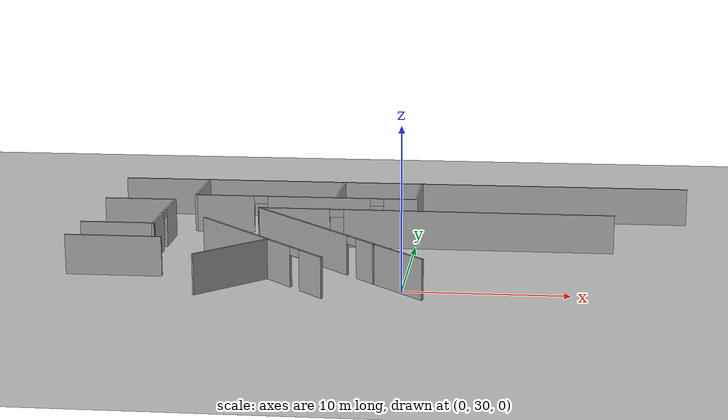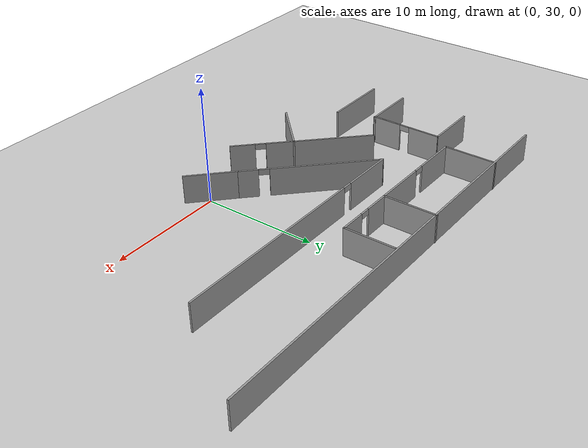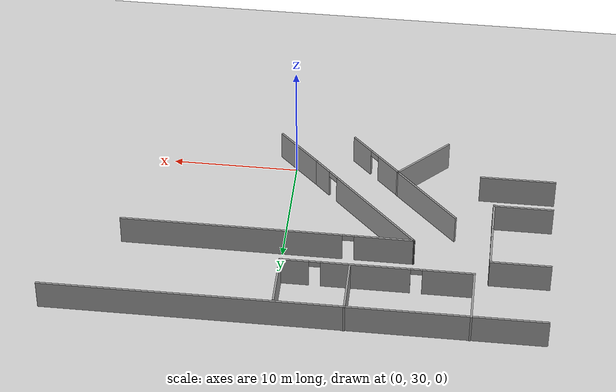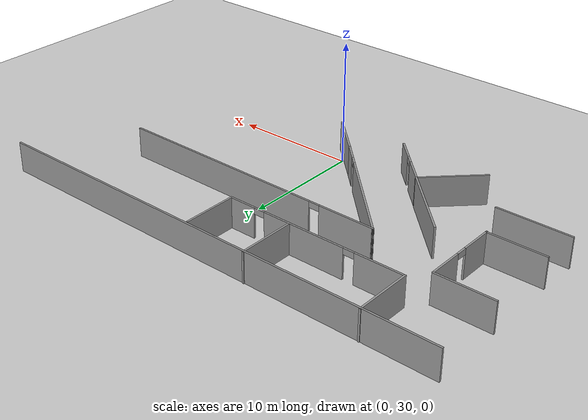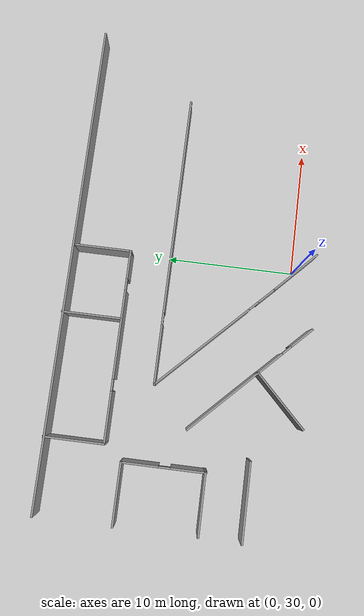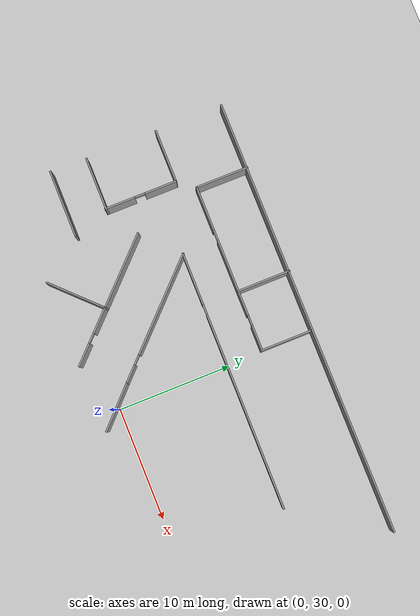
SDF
<sdf version="1.6">
 <world name="default">
  <model name="ground_plane">
   <static>1</static>
   <link name="link">
    <collision name="collision">
     <geometry><plane><normal>0 0 1</normal><size>100 100</size></plane></geometry>
     <surface>
      <contact><collide_bitmask>65535</collide_bitmask></contact>
      <friction><ode><mu>100</mu><mu2>50</mu2></ode></friction>
     </surface>
    </collision>
    <visual name="visual">
     <cast_shadows>0</cast_shadows>
     <geometry><plane><normal>0 0 1</normal><size>100 100</size></plane></geometry>
     <material>
      <script><uri>file://media/materials/scripts/gazebo.material</uri><name>Gazebo/Grey</name></script>
     </material>
    </visual>
   </link>
  </model>
  <model name="Level_1_with_doors">
   <link name="Wall_100">
    <pose>-15.0465 7.67091 0 0 -0 0.785398</pose>
    <visual name="Wall_100_Visual">
     <pose>0 0 1.25 0 -0 0</pose>
     <geometry><box><size>5.5 0.15 2.5</size></box></geometry>
     <material>
      <script><uri>file://media/materials/scripts/gazebo.material</uri><name>Gazebo/Grey</name></script>
      <ambient>1 1 1 1</ambient>
      <shader type="pixel"/>
     </material>
     <meta><layer>0</layer></meta>
    </visual>
    <collision name="Wall_100_Collision">
     <pose>0 0 1.25 0 -0 0</pose>
     <geometry><box><size>5.5 0.15 2.5</size></box></geometry>
     <surface>
      <friction>
       <ode><mu>1</mu><mu2>1</mu2><fdir1>0 0 0</fdir1><slip1>0</slip1><slip2>0</slip2></ode>
       <torsional>
        <coefficient>1</coefficient>
        <patch_radius>0</patch_radius>
        <surface_radius>0</surface_radius>
        <use_patch_radius>1</use_patch_radius>
        <ode><slip>0</slip></ode>
       </torsional>
      </friction>
      <bounce><restitution_coefficient>0</restitution_coefficient><threshold>1e+06</threshold></bounce>
      <contact>
       <collide_without_contact>0</collide_without_contact>
       <collide_without_contact_bitmask>1</collide_without_contact_bitmask>
       <collide_bitmask>1</collide_bitmask>
       <ode>
        <soft_cfm>0</soft_cfm>
        <soft_erp>0.2</soft_erp>
        <kp>1e+13</kp>
        <kd>1</kd>
        <max_vel>0.01</max_vel>
        <min_depth>0</min_depth>
       </ode>
       <bullet>
        <split_impulse>1</split_impulse>
        <split_impulse_penetration_threshold>-0.01</split_impulse_penetration_threshold>
        <soft_cfm>0</soft_cfm>
        <soft_erp>0.2</soft_erp>
        <kp>1e+13</kp>
        <kd>1</kd>
       </bullet>
      </contact>
     </surface>
    </collision>
   </link>
   <link name="Wall_101">
    <pose>-15.5769 11.9843 0 0 -0 2.35619</pose>
    <visual name="Wall_101_Visual">
     <pose>0 0 1.25 0 -0 0</pose>
     <geometry><box><size>7 0.15 2.5</size></box></geometry>
     <material>
      <script><uri>file://media/materials/scripts/gazebo.material</uri><name>Gazebo/Grey</name></script>
      <ambient>1 1 1 1</ambient>
      <shader type="pixel"/>
     </material>
     <meta><layer>0</layer></meta>
    </visual>
    <collision name="Wall_101_Collision">
     <pose>0 0 1.25 0 -0 0</pose>
     <geometry><box><size>7 0.15 2.5</size></box></geometry>
     <surface>
      <friction>
       <ode><mu>1</mu><mu2>1</mu2><fdir1>0 0 0</fdir1><slip1>0</slip1><slip2>0</slip2></ode>
       <torsional>
        <coefficient>1</coefficient>
        <patch_radius>0</patch_radius>
        <surface_radius>0</surface_radius>
        <use_patch_radius>1</use_patch_radius>
        <ode><slip>0</slip></ode>
       </torsional>
      </friction>
      <bounce><restitution_coefficient>0</restitution_coefficient><threshold>1e+06</threshold></bounce>
      <contact>
       <collide_without_contact>0</collide_without_contact>
       <collide_without_contact_bitmask>1</collide_without_contact_bitmask>
       <collide_bitmask>1</collide_bitmask>
       <ode>
        <soft_cfm>0</soft_cfm>
        <soft_erp>0.2</soft_erp>
        <kp>1e+13</kp>
        <kd>1</kd>
        <max_vel>0.01</max_vel>
        <min_depth>0</min_depth>
       </ode>
       <bullet>
        <split_impulse>1</split_impulse>
        <split_impulse_penetration_threshold>-0.01</split_impulse_penetration_threshold>
        <soft_cfm>0</soft_cfm>
        <soft_erp>0.2</soft_erp>
        <kp>1e+13</kp>
        <kd>1</kd>
       </bullet>
      </contact>
     </surface>
    </collision>
   </link>
   <link name="Wall_103">
    <pose>-11.2777 7.65854 0 0 -0 2.35619</pose>
    <visual name="Wall_103_Visual_0">
     <pose>-1.67645 0 1.25 0 -0 0</pose>
     <geometry><box><size>2.1471 0.15 2.5</size></box></geometry>
     <material>
      <script><uri>file://media/materials/scripts/gazebo.material</uri><name>Gazebo/Grey</name></script>
      <ambient>1 1 1 1</ambient>
      <shader type="pixel"/>
     </material>
     <meta><layer>0</layer></meta>
    </visual>
    <visual name="Wall_103_Visual_2">
     <pose>-0.152901 0 2.25 0 -0 0</pose>
     <geometry><box><size>0.9 0.15 0.5</size></box></geometry>
     <material>
      <script><uri>file://media/materials/scripts/gazebo.material</uri><name>Gazebo/Grey</name></script>
      <ambient>1 1 1 1</ambient>
      <shader type="pixel"/>
     </material>
     <meta><layer>0</layer></meta>
    </visual>
    <visual name="Wall_103_Visual_1">
     <pose>1.52355 0 1.25 0 -0 0</pose>
     <geometry><box><size>2.4529 0.15 2.5</size></box></geometry>
     <material>
      <script><uri>file://media/materials/scripts/gazebo.material</uri><name>Gazebo/Grey</name></script>
      <ambient>1 1 1 1</ambient>
      <shader type="pixel"/>
     </material>
     <meta><layer>0</layer></meta>
    </visual>
    <collision name="Wall_103_Collision_2">
     <pose>-0.152901 0 2.25 0 -0 0</pose>
     <geometry><box><size>0.9 0.15 0.5</size></box></geometry>
     <surface>
      <friction>
       <ode><mu>1</mu><mu2>1</mu2><fdir1>0 0 0</fdir1><slip1>0</slip1><slip2>0</slip2></ode>
       <torsional>
        <coefficient>1</coefficient>
        <patch_radius>0</patch_radius>
        <surface_radius>0</surface_radius>
        <use_patch_radius>1</use_patch_radius>
        <ode><slip>0</slip></ode>
       </torsional>
      </friction>
      <bounce><restitution_coefficient>0</restitution_coefficient><threshold>1e+06</threshold></bounce>
      <contact>
       <collide_without_contact>0</collide_without_contact>
       <collide_without_contact_bitmask>1</collide_without_contact_bitmask>
       <collide_bitmask>1</collide_bitmask>
       <ode>
        <soft_cfm>0</soft_cfm>
        <soft_erp>0.2</soft_erp>
        <kp>1e+13</kp>
        <kd>1</kd>
        <max_vel>0.01</max_vel>
        <min_depth>0</min_depth>
       </ode>
       <bullet>
        <split_impulse>1</split_impulse>
        <split_impulse_penetration_threshold>-0.01</split_impulse_penetration_threshold>
        <soft_cfm>0</soft_cfm>
        <soft_erp>0.2</soft_erp>
        <kp>1e+13</kp>
        <kd>1</kd>
       </bullet>
      </contact>
     </surface>
    </collision>
    <collision name="Wall_103_Collision_1">
     <pose>1.52355 0 1.25 0 -0 0</pose>
     <geometry><box><size>2.4529 0.15 2.5</size></box></geometry>
     <surface>
      <friction>
       <ode><mu>1</mu><mu2>1</mu2><fdir1>0 0 0</fdir1><slip1>0</slip1><slip2>0</slip2></ode>
       <torsional>
        <coefficient>1</coefficient>
        <patch_radius>0</patch_radius>
        <surface_radius>0</surface_radius>
        <use_patch_radius>1</use_patch_radius>
        <ode><slip>0</slip></ode>
       </torsional>
      </friction>
      <bounce><restitution_coefficient>0</restitution_coefficient><threshold>1e+06</threshold></bounce>
      <contact>
       <collide_without_contact>0</collide_without_contact>
       <collide_without_contact_bitmask>1</collide_without_contact_bitmask>
       <collide_bitmask>1</collide_bitmask>
       <ode>
        <soft_cfm>0</soft_cfm>
        <soft_erp>0.2</soft_erp>
        <kp>1e+13</kp>
        <kd>1</kd>
        <max_vel>0.01</max_vel>
        <min_depth>0</min_depth>
       </ode>
       <bullet>
        <split_impulse>1</split_impulse>
        <split_impulse_penetration_threshold>-0.01</split_impulse_penetration_threshold>
        <soft_cfm>0</soft_cfm>
        <soft_erp>0.2</soft_erp>
        <kp>1e+13</kp>
        <kd>1</kd>
       </bullet>
      </contact>
     </surface>
    </collision>
    <collision name="Wall_103_Collision_0">
     <pose>-1.67645 0 1.25 0 -0 0</pose>
     <geometry><box><size>2.1471 0.15 2.5</size></box></geometry>
     <surface>
      <friction>
       <ode><mu>1</mu><mu2>1</mu2><fdir1>0 0 0</fdir1><slip1>0</slip1><slip2>0</slip2></ode>
       <torsional>
        <coefficient>1</coefficient>
        <patch_radius>0</patch_radius>
        <surface_radius>0</surface_radius>
        <use_patch_radius>1</use_patch_radius>
        <ode><slip>0</slip></ode>
       </torsional>
      </friction>
      <bounce><restitution_coefficient>0</restitution_coefficient><threshold>1e+06</threshold></bounce>
      <contact>
       <collide_without_contact>0</collide_without_contact>
       <collide_without_contact_bitmask>1</collide_without_contact_bitmask>
       <collide_bitmask>1</collide_bitmask>
       <ode>
        <soft_cfm>0</soft_cfm>
        <soft_erp>0.2</soft_erp>
        <kp>1e+13</kp>
        <kd>1</kd>
        <max_vel>0.01</max_vel>
        <min_depth>0</min_depth>
       </ode>
       <bullet>
        <split_impulse>1</split_impulse>
        <split_impulse_penetration_threshold>-0.01</split_impulse_penetration_threshold>
        <soft_cfm>0</soft_cfm>
        <soft_erp>0.2</soft_erp>
        <kp>1e+13</kp>
        <kd>1</kd>
       </bullet>
      </contact>
     </surface>
    </collision>
   </link>
   <link name="Wall_105">
    <pose>-22.6986 9.45177 0 0 -0 0</pose>
    <visual name="Wall_105_Visual">
     <pose>0 0 1.25 0 -0 0</pose>
     <geometry><box><size>6 0.15 2.5</size></box></geometry>
     <material>
      <script><uri>file://media/materials/scripts/gazebo.material</uri><name>Gazebo/Grey</name></script>
      <ambient>1 1 1 1</ambient>
      <shader type="pixel"/>
     </material>
     <meta><layer>0</layer></meta>
    </visual>
    <collision name="Wall_105_Collision">
     <pose>0 0 1.25 0 -0 0</pose>
     <geometry><box><size>6 0.15 2.5</size></box></geometry>
     <surface>
      <friction>
       <ode><mu>1</mu><mu2>1</mu2><fdir1>0 0 0</fdir1><slip1>0</slip1><slip2>0</slip2></ode>
       <torsional>
        <coefficient>1</coefficient>
        <patch_radius>0</patch_radius>
        <surface_radius>0</surface_radius>
        <use_patch_radius>1</use_patch_radius>
        <ode><slip>0</slip></ode>
       </torsional>
      </friction>
      <bounce><restitution_coefficient>0</restitution_coefficient><threshold>1e+06</threshold></bounce>
      <contact>
       <collide_without_contact>0</collide_without_contact>
       <collide_without_contact_bitmask>1</collide_without_contact_bitmask>
       <collide_bitmask>1</collide_bitmask>
       <ode>
        <soft_cfm>0</soft_cfm>
        <soft_erp>0.2</soft_erp>
        <kp>1e+13</kp>
        <kd>1</kd>
        <max_vel>0.01</max_vel>
        <min_depth>0</min_depth>
       </ode>
       <bullet>
        <split_impulse>1</split_impulse>
        <split_impulse_penetration_threshold>-0.01</split_impulse_penetration_threshold>
        <soft_cfm>0</soft_cfm>
        <soft_erp>0.2</soft_erp>
        <kp>1e+13</kp>
        <kd>1</kd>
       </bullet>
      </contact>
     </surface>
    </collision>
   </link>
   <link name="Wall_11">
    <pose>-10.3199 22.7839 0 0 -0 1.5708</pose>
    <visual name="Wall_11_Visual">
     <pose>0 0 1.25 0 -0 0</pose>
     <geometry><box><size>4.75 0.15 2.5</size></box></geometry>
     <material>
      <script><uri>file://media/materials/scripts/gazebo.material</uri><name>Gazebo/Grey</name></script>
      <ambient>1 1 1 1</ambient>
      <shader type="pixel"/>
     </material>
     <meta><layer>0</layer></meta>
    </visual>
    <collision name="Wall_11_Collision">
     <pose>0 0 1.25 0 -0 0</pose>
     <geometry><box><size>4.75 0.15 2.5</size></box></geometry>
     <surface>
      <friction>
       <ode><mu>1</mu><mu2>1</mu2><fdir1>0 0 0</fdir1><slip1>0</slip1><slip2>0</slip2></ode>
       <torsional>
        <coefficient>1</coefficient>
        <patch_radius>0</patch_radius>
        <surface_radius>0</surface_radius>
        <use_patch_radius>1</use_patch_radius>
        <ode><slip>0</slip></ode>
       </torsional>
      </friction>
      <bounce><restitution_coefficient>0</restitution_coefficient><threshold>1e+06</threshold></bounce>
      <contact>
       <collide_without_contact>0</collide_without_contact>
       <collide_without_contact_bitmask>1</collide_without_contact_bitmask>
       <collide_bitmask>1</collide_bitmask>
       <ode>
        <soft_cfm>0</soft_cfm>
        <soft_erp>0.2</soft_erp>
        <kp>1e+13</kp>
        <kd>1</kd>
        <max_vel>0.01</max_vel>
        <min_depth>0</min_depth>
       </ode>
       <bullet>
        <split_impulse>1</split_impulse>
        <split_impulse_penetration_threshold>-0.01</split_impulse_penetration_threshold>
        <soft_cfm>0</soft_cfm>
        <soft_erp>0.2</soft_erp>
        <kp>1e+13</kp>
        <kd>1</kd>
       </bullet>
      </contact>
     </surface>
    </collision>
   </link>
   <link name="Wall_113">
    <pose>-23.2791 19.0392 0 0 -0 0</pose>
    <visual name="Wall_113_Visual">
     <pose>0 0 1.25 0 -0 0</pose>
     <geometry><box><size>4.75 0.15 2.5</size></box></geometry>
     <material>
      <script><uri>file://media/materials/scripts/gazebo.material</uri><name>Gazebo/Grey</name></script>
      <ambient>1 1 1 1</ambient>
      <shader type="pixel"/>
     </material>
     <meta><layer>0</layer></meta>
    </visual>
    <collision name="Wall_113_Collision">
     <pose>0 0 1.25 0 -0 0</pose>
     <geometry><box><size>4.75 0.15 2.5</size></box></geometry>
     <surface>
      <friction>
       <ode><mu>1</mu><mu2>1</mu2><fdir1>0 0 0</fdir1><slip1>0</slip1><slip2>0</slip2></ode>
       <torsional>
        <coefficient>1</coefficient>
        <patch_radius>0</patch_radius>
        <surface_radius>0</surface_radius>
        <use_patch_radius>1</use_patch_radius>
        <ode><slip>0</slip></ode>
       </torsional>
      </friction>
      <bounce><restitution_coefficient>0</restitution_coefficient><threshold>1e+06</threshold></bounce>
      <contact>
       <collide_without_contact>0</collide_without_contact>
       <collide_without_contact_bitmask>1</collide_without_contact_bitmask>
       <collide_bitmask>1</collide_bitmask>
       <ode>
        <soft_cfm>0</soft_cfm>
        <soft_erp>0.2</soft_erp>
        <kp>1e+13</kp>
        <kd>1</kd>
        <max_vel>0.01</max_vel>
        <min_depth>0</min_depth>
       </ode>
       <bullet>
        <split_impulse>1</split_impulse>
        <split_impulse_penetration_threshold>-0.01</split_impulse_penetration_threshold>
        <soft_cfm>0</soft_cfm>
        <soft_erp>0.2</soft_erp>
        <kp>1e+13</kp>
        <kd>1</kd>
       </bullet>
      </contact>
     </surface>
    </collision>
   </link>
   <link name="Wall_114">
    <pose>-20.9508 15.8085 0 0 0 -1.5708</pose>
    <visual name="Wall_114_Visual_0">
     <pose>-1.82331 0 1.25 0 -0 0</pose>
     <geometry><box><size>2.85338 0.15 2.5</size></box></geometry>
     <material>
      <script><uri>file://media/materials/scripts/gazebo.material</uri><name>Gazebo/Grey</name></script>
      <ambient>1 1 1 1</ambient>
      <shader type="pixel"/>
     </material>
     <meta><layer>0</layer></meta>
    </visual>
    <visual name="Wall_114_Visual_1">
     <pose>1.87669 0 1.25 0 -0 0</pose>
     <geometry><box><size>2.74662 0.15 2.5</size></box></geometry>
     <material>
      <script><uri>file://media/materials/scripts/gazebo.material</uri><name>Gazebo/Grey</name></script>
      <ambient>1 1 1 1</ambient>
      <shader type="pixel"/>
     </material>
     <meta><layer>0</layer></meta>
    </visual>
    <visual name="Wall_114_Visual_2">
     <pose>0.05338 0 2.25 0 -0 0</pose>
     <geometry><box><size>0.9 0.15 0.5</size></box></geometry>
     <material>
      <script><uri>file://media/materials/scripts/gazebo.material</uri><name>Gazebo/Grey</name></script>
      <ambient>1 1 1 1</ambient>
      <shader type="pixel"/>
     </material>
     <meta><layer>0</layer></meta>
    </visual>
    <collision name="Wall_114_Collision_0">
     <pose>-1.82331 0 1.25 0 -0 0</pose>
     <geometry><box><size>2.85338 0.15 2.5</size></box></geometry>
     <surface>
      <friction>
       <ode><mu>1</mu><mu2>1</mu2><fdir1>0 0 0</fdir1><slip1>0</slip1><slip2>0</slip2></ode>
       <torsional>
        <coefficient>1</coefficient>
        <patch_radius>0</patch_radius>
        <surface_radius>0</surface_radius>
        <use_patch_radius>1</use_patch_radius>
        <ode><slip>0</slip></ode>
       </torsional>
      </friction>
      <bounce><restitution_coefficient>0</restitution_coefficient><threshold>1e+06</threshold></bounce>
      <contact>
       <collide_without_contact>0</collide_without_contact>
       <collide_without_contact_bitmask>1</collide_without_contact_bitmask>
       <collide_bitmask>1</collide_bitmask>
       <ode>
        <soft_cfm>0</soft_cfm>
        <soft_erp>0.2</soft_erp>
        <kp>1e+13</kp>
        <kd>1</kd>
        <max_vel>0.01</max_vel>
        <min_depth>0</min_depth>
       </ode>
       <bullet>
        <split_impulse>1</split_impulse>
        <split_impulse_penetration_threshold>-0.01</split_impulse_penetration_threshold>
        <soft_cfm>0</soft_cfm>
        <soft_erp>0.2</soft_erp>
        <kp>1e+13</kp>
        <kd>1</kd>
       </bullet>
      </contact>
     </surface>
    </collision>
    <collision name="Wall_114_Collision_2">
     <pose>0.05338 0 2.25 0 -0 0</pose>
     <geometry><box><size>0.9 0.15 0.5</size></box></geometry>
     <surface>
      <friction>
       <ode><mu>1</mu><mu2>1</mu2><fdir1>0 0 0</fdir1><slip1>0</slip1><slip2>0</slip2></ode>
       <torsional>
        <coefficient>1</coefficient>
        <patch_radius>0</patch_radius>
        <surface_radius>0</surface_radius>
        <use_patch_radius>1</use_patch_radius>
        <ode><slip>0</slip></ode>
       </torsional>
      </friction>
      <bounce><restitution_coefficient>0</restitution_coefficient><threshold>1e+06</threshold></bounce>
      <contact>
       <collide_without_contact>0</collide_without_contact>
       <collide_without_contact_bitmask>1</collide_without_contact_bitmask>
       <collide_bitmask>1</collide_bitmask>
       <ode>
        <soft_cfm>0</soft_cfm>
        <soft_erp>0.2</soft_erp>
        <kp>1e+13</kp>
        <kd>1</kd>
        <max_vel>0.01</max_vel>
        <min_depth>0</min_depth>
       </ode>
       <bullet>
        <split_impulse>1</split_impulse>
        <split_impulse_penetration_threshold>-0.01</split_impulse_penetration_threshold>
        <soft_cfm>0</soft_cfm>
        <soft_erp>0.2</soft_erp>
        <kp>1e+13</kp>
        <kd>1</kd>
       </bullet>
      </contact>
     </surface>
    </collision>
    <collision name="Wall_114_Collision_1">
     <pose>1.87669 0 1.25 0 -0 0</pose>
     <geometry><box><size>2.74662 0.15 2.5</size></box></geometry>
     <surface>
      <friction>
       <ode><mu>1</mu><mu2>1</mu2><fdir1>0 0 0</fdir1><slip1>0</slip1><slip2>0</slip2></ode>
       <torsional>
        <coefficient>1</coefficient>
        <patch_radius>0</patch_radius>
        <surface_radius>0</surface_radius>
        <use_patch_radius>1</use_patch_radius>
        <ode><slip>0</slip></ode>
       </torsional>
      </friction>
      <bounce><restitution_coefficient>0</restitution_coefficient><threshold>1e+06</threshold></bounce>
      <contact>
       <collide_without_contact>0</collide_without_contact>
       <collide_without_contact_bitmask>1</collide_without_contact_bitmask>
       <collide_bitmask>1</collide_bitmask>
       <ode>
        <soft_cfm>0</soft_cfm>
        <soft_erp>0.2</soft_erp>
        <kp>1e+13</kp>
        <kd>1</kd>
        <max_vel>0.01</max_vel>
        <min_depth>0</min_depth>
       </ode>
       <bullet>
        <split_impulse>1</split_impulse>
        <split_impulse_penetration_threshold>-0.01</split_impulse_penetration_threshold>
        <soft_cfm>0</soft_cfm>
        <soft_erp>0.2</soft_erp>
        <kp>1e+13</kp>
        <kd>1</kd>
       </bullet>
      </contact>
     </surface>
    </collision>
   </link>
   <link name="Wall_115">
    <pose>-23.2325 12.6918 0 0 -0 3.14159</pose>
    <visual name="Wall_115_Visual">
     <pose>0 0 1.25 0 -0 0</pose>
     <geometry><box><size>4.75 0.15 2.5</size></box></geometry>
     <material>
      <script><uri>file://media/materials/scripts/gazebo.material</uri><name>Gazebo/Grey</name></script>
      <ambient>1 1 1 1</ambient>
      <shader type="pixel"/>
     </material>
     <meta><layer>0</layer></meta>
    </visual>
    <collision name="Wall_115_Collision">
     <pose>0 0 1.25 0 -0 0</pose>
     <geometry><box><size>4.75 0.15 2.5</size></box></geometry>
     <surface>
      <friction>
       <ode><mu>1</mu><mu2>1</mu2><fdir1>0 0 0</fdir1><slip1>0</slip1><slip2>0</slip2></ode>
       <torsional>
        <coefficient>1</coefficient>
        <patch_radius>0</patch_radius>
        <surface_radius>0</surface_radius>
        <use_patch_radius>1</use_patch_radius>
        <ode><slip>0</slip></ode>
       </torsional>
      </friction>
      <bounce><restitution_coefficient>0</restitution_coefficient><threshold>1e+06</threshold></bounce>
      <contact>
       <collide_without_contact>0</collide_without_contact>
       <collide_without_contact_bitmask>1</collide_without_contact_bitmask>
       <collide_bitmask>1</collide_bitmask>
       <ode>
        <soft_cfm>0</soft_cfm>
        <soft_erp>0.2</soft_erp>
        <kp>1e+13</kp>
        <kd>1</kd>
        <max_vel>0.01</max_vel>
        <min_depth>0</min_depth>
       </ode>
       <bullet>
        <split_impulse>1</split_impulse>
        <split_impulse_penetration_threshold>-0.01</split_impulse_penetration_threshold>
        <soft_cfm>0</soft_cfm>
        <soft_erp>0.2</soft_erp>
        <kp>1e+13</kp>
        <kd>1</kd>
       </bullet>
      </contact>
     </surface>
    </collision>
   </link>
   <link name="Wall_21">
    <pose>-3.54354 17.2816 0 0 0 -0.002706</pose>
    <visual name="Wall_21_Visual_0">
     <pose>-9.15572 0 1.25 0 -0 0</pose>
     <geometry><box><size>4.68857 0.15 2.5</size></box></geometry>
     <material>
      <script><uri>file://media/materials/scripts/gazebo.material</uri><name>Gazebo/Grey</name></script>
      <ambient>1 1 1 1</ambient>
      <shader type="pixel"/>
     </material>
     <meta><layer>0</layer></meta>
    </visual>
    <visual name="Wall_21_Visual_2">
     <pose>-6.36143 0 2.25 0 -0 0</pose>
     <geometry><box><size>0.9 0.15 0.5</size></box></geometry>
     <material>
      <script><uri>file://media/materials/scripts/gazebo.material</uri><name>Gazebo/Grey</name></script>
      <ambient>1 1 1 1</ambient>
      <shader type="pixel"/>
     </material>
     <meta><layer>0</layer></meta>
    </visual>
    <visual name="Wall_21_Visual_1">
     <pose>2.79428 0 1.25 0 -0 0</pose>
     <geometry><box><size>17.4114 0.15 2.5</size></box></geometry>
     <material>
      <script><uri>file://media/materials/scripts/gazebo.material</uri><name>Gazebo/Grey</name></script>
      <ambient>1 1 1 1</ambient>
      <shader type="pixel"/>
     </material>
     <meta><layer>0</layer></meta>
    </visual>
    <collision name="Wall_21_Collision_0">
     <pose>-9.15572 0 1.25 0 -0 0</pose>
     <geometry><box><size>4.68857 0.15 2.5</size></box></geometry>
     <surface>
      <friction>
       <ode><mu>1</mu><mu2>1</mu2><fdir1>0 0 0</fdir1><slip1>0</slip1><slip2>0</slip2></ode>
       <torsional>
        <coefficient>1</coefficient>
        <patch_radius>0</patch_radius>
        <surface_radius>0</surface_radius>
        <use_patch_radius>1</use_patch_radius>
        <ode><slip>0</slip></ode>
       </torsional>
      </friction>
      <bounce><restitution_coefficient>0</restitution_coefficient><threshold>1e+06</threshold></bounce>
      <contact>
       <collide_without_contact>0</collide_without_contact>
       <collide_without_contact_bitmask>1</collide_without_contact_bitmask>
       <collide_bitmask>1</collide_bitmask>
       <ode>
        <soft_cfm>0</soft_cfm>
        <soft_erp>0.2</soft_erp>
        <kp>1e+13</kp>
        <kd>1</kd>
        <max_vel>0.01</max_vel>
        <min_depth>0</min_depth>
       </ode>
       <bullet>
        <split_impulse>1</split_impulse>
        <split_impulse_penetration_threshold>-0.01</split_impulse_penetration_threshold>
        <soft_cfm>0</soft_cfm>
        <soft_erp>0.2</soft_erp>
        <kp>1e+13</kp>
        <kd>1</kd>
       </bullet>
      </contact>
     </surface>
    </collision>
    <collision name="Wall_21_Collision_2">
     <pose>-6.36143 0 2.25 0 -0 0</pose>
     <geometry><box><size>0.9 0.15 0.5</size></box></geometry>
     <surface>
      <friction>
       <ode><mu>1</mu><mu2>1</mu2><fdir1>0 0 0</fdir1><slip1>0</slip1><slip2>0</slip2></ode>
       <torsional>
        <coefficient>1</coefficient>
        <patch_radius>0</patch_radius>
        <surface_radius>0</surface_radius>
        <use_patch_radius>1</use_patch_radius>
        <ode><slip>0</slip></ode>
       </torsional>
      </friction>
      <bounce><restitution_coefficient>0</restitution_coefficient><threshold>1e+06</threshold></bounce>
      <contact>
       <collide_without_contact>0</collide_without_contact>
       <collide_without_contact_bitmask>1</collide_without_contact_bitmask>
       <collide_bitmask>1</collide_bitmask>
       <ode>
        <soft_cfm>0</soft_cfm>
        <soft_erp>0.2</soft_erp>
        <kp>1e+13</kp>
        <kd>1</kd>
        <max_vel>0.01</max_vel>
        <min_depth>0</min_depth>
       </ode>
       <bullet>
        <split_impulse>1</split_impulse>
        <split_impulse_penetration_threshold>-0.01</split_impulse_penetration_threshold>
        <soft_cfm>0</soft_cfm>
        <soft_erp>0.2</soft_erp>
        <kp>1e+13</kp>
        <kd>1</kd>
       </bullet>
      </contact>
     </surface>
    </collision>
    <collision name="Wall_21_Collision_1">
     <pose>2.79428 0 1.25 0 -0 0</pose>
     <geometry><box><size>17.4114 0.15 2.5</size></box></geometry>
     <surface>
      <friction>
       <ode><mu>1</mu><mu2>1</mu2><fdir1>0 0 0</fdir1><slip1>0</slip1><slip2>0</slip2></ode>
       <torsional>
        <coefficient>1</coefficient>
        <patch_radius>0</patch_radius>
        <surface_radius>0</surface_radius>
        <use_patch_radius>1</use_patch_radius>
        <ode><slip>0</slip></ode>
       </torsional>
      </friction>
      <bounce><restitution_coefficient>0</restitution_coefficient><threshold>1e+06</threshold></bounce>
      <contact>
       <collide_without_contact>0</collide_without_contact>
       <collide_without_contact_bitmask>1</collide_without_contact_bitmask>
       <collide_bitmask>1</collide_bitmask>
       <ode>
        <soft_cfm>0</soft_cfm>
        <soft_erp>0.2</soft_erp>
        <kp>1e+13</kp>
        <kd>1</kd>
        <max_vel>0.01</max_vel>
        <min_depth>0</min_depth>
       </ode>
       <bullet>
        <split_impulse>1</split_impulse>
        <split_impulse_penetration_threshold>-0.01</split_impulse_penetration_threshold>
        <soft_cfm>0</soft_cfm>
        <soft_erp>0.2</soft_erp>
        <kp>1e+13</kp>
        <kd>1</kd>
       </bullet>
      </contact>
     </surface>
    </collision>
   </link>
   <link name="Wall_3">
    <pose>-6.28376 25.0216 0 0 -0 0</pose>
    <visual name="Wall_3_Visual">
     <pose>0 0 1.25 0 -0 0</pose>
     <geometry><box><size>38.75 0.15 2.5</size></box></geometry>
     <material>
      <script><uri>file://media/materials/scripts/gazebo.material</uri><name>Gazebo/Grey</name></script>
      <ambient>1 1 1 1</ambient>
      <shader type="pixel"/>
     </material>
     <meta><layer>0</layer></meta>
    </visual>
    <collision name="Wall_3_Collision">
     <pose>0 0 1.25 0 -0 0</pose>
     <geometry><box><size>38.75 0.15 2.5</size></box></geometry>
     <surface>
      <friction>
       <ode><mu>1</mu><mu2>1</mu2><fdir1>0 0 0</fdir1><slip1>0</slip1><slip2>0</slip2></ode>
       <torsional>
        <coefficient>1</coefficient>
        <patch_radius>0</patch_radius>
        <surface_radius>0</surface_radius>
        <use_patch_radius>1</use_patch_radius>
        <ode><slip>0</slip></ode>
       </torsional>
      </friction>
      <bounce><restitution_coefficient>0</restitution_coefficient><threshold>1e+06</threshold></bounce>
      <contact>
       <collide_without_contact>0</collide_without_contact>
       <collide_without_contact_bitmask>1</collide_without_contact_bitmask>
       <collide_bitmask>1</collide_bitmask>
       <ode>
        <soft_cfm>0</soft_cfm>
        <soft_erp>0.2</soft_erp>
        <kp>1e+13</kp>
        <kd>1</kd>
        <max_vel>0.01</max_vel>
        <min_depth>0</min_depth>
       </ode>
       <bullet>
        <split_impulse>1</split_impulse>
        <split_impulse_penetration_threshold>-0.01</split_impulse_penetration_threshold>
        <soft_cfm>0</soft_cfm>
        <soft_erp>0.2</soft_erp>
        <kp>1e+13</kp>
        <kd>1</kd>
       </bullet>
      </contact>
     </surface>
    </collision>
   </link>
   <link name="Wall_48">
    <pose>-10.7789 13.1229 0 0 0 -0.785398</pose>
    <visual name="Wall_48_Visual_1">
     <pose>5.12573 0 1.25 0 -0 0</pose>
     <geometry><box><size>1.74854 0.15 2.5</size></box></geometry>
     <material>
      <script><uri>file://media/materials/scripts/gazebo.material</uri><name>Gazebo/Grey</name></script>
      <ambient>1 1 1 1</ambient>
      <shader type="pixel"/>
     </material>
     <meta><layer>0</layer></meta>
    </visual>
    <visual name="Wall_48_Visual_0">
     <pose>-1.32427 0 1.25 0 -0 0</pose>
     <geometry><box><size>9.35146 0.15 2.5</size></box></geometry>
     <material>
      <script><uri>file://media/materials/scripts/gazebo.material</uri><name>Gazebo/Grey</name></script>
      <ambient>1 1 1 1</ambient>
      <shader type="pixel"/>
     </material>
     <meta><layer>0</layer></meta>
    </visual>
    <visual name="Wall_48_Visual_2">
     <pose>3.80146 0 2.25 0 -0 0</pose>
     <geometry><box><size>0.9 0.15 0.5</size></box></geometry>
     <material>
      <script><uri>file://media/materials/scripts/gazebo.material</uri><name>Gazebo/Grey</name></script>
      <ambient>1 1 1 1</ambient>
      <shader type="pixel"/>
     </material>
     <meta><layer>0</layer></meta>
    </visual>
    <collision name="Wall_48_Collision_2">
     <pose>3.80146 0 2.25 0 -0 0</pose>
     <geometry><box><size>0.9 0.15 0.5</size></box></geometry>
     <surface>
      <friction>
       <ode><mu>1</mu><mu2>1</mu2><fdir1>0 0 0</fdir1><slip1>0</slip1><slip2>0</slip2></ode>
       <torsional>
        <coefficient>1</coefficient>
        <patch_radius>0</patch_radius>
        <surface_radius>0</surface_radius>
        <use_patch_radius>1</use_patch_radius>
        <ode><slip>0</slip></ode>
       </torsional>
      </friction>
      <bounce><restitution_coefficient>0</restitution_coefficient><threshold>1e+06</threshold></bounce>
      <contact>
       <collide_without_contact>0</collide_without_contact>
       <collide_without_contact_bitmask>1</collide_without_contact_bitmask>
       <collide_bitmask>1</collide_bitmask>
       <ode>
        <soft_cfm>0</soft_cfm>
        <soft_erp>0.2</soft_erp>
        <kp>1e+13</kp>
        <kd>1</kd>
        <max_vel>0.01</max_vel>
        <min_depth>0</min_depth>
       </ode>
       <bullet>
        <split_impulse>1</split_impulse>
        <split_impulse_penetration_threshold>-0.01</split_impulse_penetration_threshold>
        <soft_cfm>0</soft_cfm>
        <soft_erp>0.2</soft_erp>
        <kp>1e+13</kp>
        <kd>1</kd>
       </bullet>
      </contact>
     </surface>
    </collision>
    <collision name="Wall_48_Collision_0">
     <pose>-1.32427 0 1.25 0 -0 0</pose>
     <geometry><box><size>9.35146 0.15 2.5</size></box></geometry>
     <surface>
      <friction>
       <ode><mu>1</mu><mu2>1</mu2><fdir1>0 0 0</fdir1><slip1>0</slip1><slip2>0</slip2></ode>
       <torsional>
        <coefficient>1</coefficient>
        <patch_radius>0</patch_radius>
        <surface_radius>0</surface_radius>
        <use_patch_radius>1</use_patch_radius>
        <ode><slip>0</slip></ode>
       </torsional>
      </friction>
      <bounce><restitution_coefficient>0</restitution_coefficient><threshold>1e+06</threshold></bounce>
      <contact>
       <collide_without_contact>0</collide_without_contact>
       <collide_without_contact_bitmask>1</collide_without_contact_bitmask>
       <collide_bitmask>1</collide_bitmask>
       <ode>
        <soft_cfm>0</soft_cfm>
        <soft_erp>0.2</soft_erp>
        <kp>1e+13</kp>
        <kd>1</kd>
        <max_vel>0.01</max_vel>
        <min_depth>0</min_depth>
       </ode>
       <bullet>
        <split_impulse>1</split_impulse>
        <split_impulse_penetration_threshold>-0.01</split_impulse_penetration_threshold>
        <soft_cfm>0</soft_cfm>
        <soft_erp>0.2</soft_erp>
        <kp>1e+13</kp>
        <kd>1</kd>
       </bullet>
      </contact>
     </surface>
    </collision>
    <collision name="Wall_48_Collision_1">
     <pose>5.12573 0 1.25 0 -0 0</pose>
     <geometry><box><size>1.74854 0.15 2.5</size></box></geometry>
     <surface>
      <friction>
       <ode><mu>1</mu><mu2>1</mu2><fdir1>0 0 0</fdir1><slip1>0</slip1><slip2>0</slip2></ode>
       <torsional>
        <coefficient>1</coefficient>
        <patch_radius>0</patch_radius>
        <surface_radius>0</surface_radius>
        <use_patch_radius>1</use_patch_radius>
        <ode><slip>0</slip></ode>
       </torsional>
      </friction>
      <bounce><restitution_coefficient>0</restitution_coefficient><threshold>1e+06</threshold></bounce>
      <contact>
       <collide_without_contact>0</collide_without_contact>
       <collide_without_contact_bitmask>1</collide_without_contact_bitmask>
       <collide_bitmask>1</collide_bitmask>
       <ode>
        <soft_cfm>0</soft_cfm>
        <soft_erp>0.2</soft_erp>
        <kp>1e+13</kp>
        <kd>1</kd>
        <max_vel>0.01</max_vel>
        <min_depth>0</min_depth>
       </ode>
       <bullet>
        <split_impulse>1</split_impulse>
        <split_impulse_penetration_threshold>-0.01</split_impulse_penetration_threshold>
        <soft_cfm>0</soft_cfm>
        <soft_erp>0.2</soft_erp>
        <kp>1e+13</kp>
        <kd>1</kd>
       </bullet>
      </contact>
     </surface>
    </collision>
   </link>
   <link name="Wall_52">
    <pose>-5.04193 7.43067 0 0 -0 2.37088</pose>
    <visual name="Wall_52_Visual">
     <pose>0 0 1.25 0 -0 0</pose>
     <geometry><box><size>4.46382 0.15 2.5</size></box></geometry>
     <material>
      <script><uri>file://media/materials/scripts/gazebo.material</uri><name>Gazebo/Grey</name></script>
      <ambient>1 1 1 1</ambient>
      <shader type="pixel"/>
     </material>
     <meta><layer>0</layer></meta>
    </visual>
    <collision name="Wall_52_Collision">
     <pose>0 0 1.25 0 -0 0</pose>
     <geometry><box><size>4.46382 0.15 2.5</size></box></geometry>
     <surface>
      <friction>
       <ode><mu>1</mu><mu2>1</mu2><fdir1>0 0 0</fdir1><slip1>0</slip1><slip2>0</slip2></ode>
       <torsional>
        <coefficient>1</coefficient>
        <patch_radius>0</patch_radius>
        <surface_radius>0</surface_radius>
        <use_patch_radius>1</use_patch_radius>
        <ode><slip>0</slip></ode>
       </torsional>
      </friction>
      <bounce><restitution_coefficient>0</restitution_coefficient><threshold>1e+06</threshold></bounce>
      <contact>
       <collide_without_contact>0</collide_without_contact>
       <collide_without_contact_bitmask>1</collide_without_contact_bitmask>
       <collide_bitmask>1</collide_bitmask>
       <ode>
        <soft_cfm>0</soft_cfm>
        <soft_erp>0.2</soft_erp>
        <kp>1e+13</kp>
        <kd>1</kd>
        <max_vel>0.01</max_vel>
        <min_depth>0</min_depth>
       </ode>
       <bullet>
        <split_impulse>1</split_impulse>
        <split_impulse_penetration_threshold>-0.01</split_impulse_penetration_threshold>
        <soft_cfm>0</soft_cfm>
        <soft_erp>0.2</soft_erp>
        <kp>1e+13</kp>
        <kd>1</kd>
       </bullet>
      </contact>
     </surface>
    </collision>
   </link>
   <link name="Wall_7">
    <pose>-19.8133 22.7706 0 0 0 -1.5708</pose>
    <visual name="Wall_7_Visual">
     <pose>0 0 1.25 0 -0 0</pose>
     <geometry><box><size>4.75 0.15 2.5</size></box></geometry>
     <material>
      <script><uri>file://media/materials/scripts/gazebo.material</uri><name>Gazebo/Grey</name></script>
      <ambient>1 1 1 1</ambient>
      <shader type="pixel"/>
     </material>
     <meta><layer>0</layer></meta>
    </visual>
    <collision name="Wall_7_Collision">
     <pose>0 0 1.25 0 -0 0</pose>
     <geometry><box><size>4.75 0.15 2.5</size></box></geometry>
     <surface>
      <friction>
       <ode><mu>1</mu><mu2>1</mu2><fdir1>0 0 0</fdir1><slip1>0</slip1><slip2>0</slip2></ode>
       <torsional>
        <coefficient>1</coefficient>
        <patch_radius>0</patch_radius>
        <surface_radius>0</surface_radius>
        <use_patch_radius>1</use_patch_radius>
        <ode><slip>0</slip></ode>
       </torsional>
      </friction>
      <bounce><restitution_coefficient>0</restitution_coefficient><threshold>1e+06</threshold></bounce>
      <contact>
       <collide_without_contact>0</collide_without_contact>
       <collide_without_contact_bitmask>1</collide_without_contact_bitmask>
       <collide_bitmask>1</collide_bitmask>
       <ode>
        <soft_cfm>0</soft_cfm>
        <soft_erp>0.2</soft_erp>
        <kp>1e+13</kp>
        <kd>1</kd>
        <max_vel>0.01</max_vel>
        <min_depth>0</min_depth>
       </ode>
       <bullet>
        <split_impulse>1</split_impulse>
        <split_impulse_penetration_threshold>-0.01</split_impulse_penetration_threshold>
        <soft_cfm>0</soft_cfm>
        <soft_erp>0.2</soft_erp>
        <kp>1e+13</kp>
        <kd>1</kd>
       </bullet>
      </contact>
     </surface>
    </collision>
   </link>
   <link name="Wall_8">
    <pose>-12.3883 20.4706 0 0 -0 0</pose>
    <visual name="Wall_8_Visual_1">
     <pose>0.868334 0 1.25 0 -0 0</pose>
     <geometry><box><size>6.88667 0.15 2.5</size></box></geometry>
     <material>
      <script><uri>file://media/materials/scripts/gazebo.material</uri><name>Gazebo/Grey</name></script>
      <ambient>1 1 1 1</ambient>
      <shader type="pixel"/>
     </material>
     <meta><layer>0</layer></meta>
    </visual>
    <visual name="Wall_8_Visual_0">
     <pose>-5.4875 0 1.25 0 -0 0</pose>
     <geometry><box><size>4.025 0.15 2.5</size></box></geometry>
     <material>
      <script><uri>file://media/materials/scripts/gazebo.material</uri><name>Gazebo/Grey</name></script>
      <ambient>1 1 1 1</ambient>
      <shader type="pixel"/>
     </material>
     <meta><layer>0</layer></meta>
    </visual>
    <visual name="Wall_8_Visual_3">
     <pose>-3.025 0 2.25 0 -0 0</pose>
     <geometry><box><size>0.9 0.15 0.5</size></box></geometry>
     <material>
      <script><uri>file://media/materials/scripts/gazebo.material</uri><name>Gazebo/Grey</name></script>
      <ambient>1 1 1 1</ambient>
      <shader type="pixel"/>
     </material>
     <meta><layer>0</layer></meta>
    </visual>
    <visual name="Wall_8_Visual_4">
     <pose>4.76167 0 2.25 0 -0 0</pose>
     <geometry><box><size>0.9 0.15 0.5</size></box></geometry>
     <material>
      <script><uri>file://media/materials/scripts/gazebo.material</uri><name>Gazebo/Grey</name></script>
      <ambient>1 1 1 1</ambient>
      <shader type="pixel"/>
     </material>
     <meta><layer>0</layer></meta>
    </visual>
    <visual name="Wall_8_Visual_2">
     <pose>6.35583 0 1.25 0 -0 0</pose>
     <geometry><box><size>2.28833 0.15 2.5</size></box></geometry>
     <material>
      <script><uri>file://media/materials/scripts/gazebo.material</uri><name>Gazebo/Grey</name></script>
      <ambient>1 1 1 1</ambient>
      <shader type="pixel"/>
     </material>
     <meta><layer>0</layer></meta>
    </visual>
    <collision name="Wall_8_Collision_1">
     <pose>0.868334 0 1.25 0 -0 0</pose>
     <geometry><box><size>6.88667 0.15 2.5</size></box></geometry>
     <surface>
      <friction>
       <ode><mu>1</mu><mu2>1</mu2><fdir1>0 0 0</fdir1><slip1>0</slip1><slip2>0</slip2></ode>
       <torsional>
        <coefficient>1</coefficient>
        <patch_radius>0</patch_radius>
        <surface_radius>0</surface_radius>
        <use_patch_radius>1</use_patch_radius>
        <ode><slip>0</slip></ode>
       </torsional>
      </friction>
      <bounce><restitution_coefficient>0</restitution_coefficient><threshold>1e+06</threshold></bounce>
      <contact>
       <collide_without_contact>0</collide_without_contact>
       <collide_without_contact_bitmask>1</collide_without_contact_bitmask>
       <collide_bitmask>1</collide_bitmask>
       <ode>
        <soft_cfm>0</soft_cfm>
        <soft_erp>0.2</soft_erp>
        <kp>1e+13</kp>
        <kd>1</kd>
        <max_vel>0.01</max_vel>
        <min_depth>0</min_depth>
       </ode>
       <bullet>
        <split_impulse>1</split_impulse>
        <split_impulse_penetration_threshold>-0.01</split_impulse_penetration_threshold>
        <soft_cfm>0</soft_cfm>
        <soft_erp>0.2</soft_erp>
        <kp>1e+13</kp>
        <kd>1</kd>
       </bullet>
      </contact>
     </surface>
    </collision>
    <collision name="Wall_8_Collision_2">
     <pose>6.35583 0 1.25 0 -0 0</pose>
     <geometry><box><size>2.28833 0.15 2.5</size></box></geometry>
     <surface>
      <friction>
       <ode><mu>1</mu><mu2>1</mu2><fdir1>0 0 0</fdir1><slip1>0</slip1><slip2>0</slip2></ode>
       <torsional>
        <coefficient>1</coefficient>
        <patch_radius>0</patch_radius>
        <surface_radius>0</surface_radius>
        <use_patch_radius>1</use_patch_radius>
        <ode><slip>0</slip></ode>
       </torsional>
      </friction>
      <bounce><restitution_coefficient>0</restitution_coefficient><threshold>1e+06</threshold></bounce>
      <contact>
       <collide_without_contact>0</collide_without_contact>
       <collide_without_contact_bitmask>1</collide_without_contact_bitmask>
       <collide_bitmask>1</collide_bitmask>
       <ode>
        <soft_cfm>0</soft_cfm>
        <soft_erp>0.2</soft_erp>
        <kp>1e+13</kp>
        <kd>1</kd>
        <max_vel>0.01</max_vel>
        <min_depth>0</min_depth>
       </ode>
       <bullet>
        <split_impulse>1</split_impulse>
        <split_impulse_penetration_threshold>-0.01</split_impulse_penetration_threshold>
        <soft_cfm>0</soft_cfm>
        <soft_erp>0.2</soft_erp>
        <kp>1e+13</kp>
        <kd>1</kd>
       </bullet>
      </contact>
     </surface>
    </collision>
    <collision name="Wall_8_Collision_4">
     <pose>4.76167 0 2.25 0 -0 0</pose>
     <geometry><box><size>0.9 0.15 0.5</size></box></geometry>
     <surface>
      <friction>
       <ode><mu>1</mu><mu2>1</mu2><fdir1>0 0 0</fdir1><slip1>0</slip1><slip2>0</slip2></ode>
       <torsional>
        <coefficient>1</coefficient>
        <patch_radius>0</patch_radius>
        <surface_radius>0</surface_radius>
        <use_patch_radius>1</use_patch_radius>
        <ode><slip>0</slip></ode>
       </torsional>
      </friction>
      <bounce><restitution_coefficient>0</restitution_coefficient><threshold>1e+06</threshold></bounce>
      <contact>
       <collide_without_contact>0</collide_without_contact>
       <collide_without_contact_bitmask>1</collide_without_contact_bitmask>
       <collide_bitmask>1</collide_bitmask>
       <ode>
        <soft_cfm>0</soft_cfm>
        <soft_erp>0.2</soft_erp>
        <kp>1e+13</kp>
        <kd>1</kd>
        <max_vel>0.01</max_vel>
        <min_depth>0</min_depth>
       </ode>
       <bullet>
        <split_impulse>1</split_impulse>
        <split_impulse_penetration_threshold>-0.01</split_impulse_penetration_threshold>
        <soft_cfm>0</soft_cfm>
        <soft_erp>0.2</soft_erp>
        <kp>1e+13</kp>
        <kd>1</kd>
       </bullet>
      </contact>
     </surface>
    </collision>
    <collision name="Wall_8_Collision_3">
     <pose>-3.025 0 2.25 0 -0 0</pose>
     <geometry><box><size>0.9 0.15 0.5</size></box></geometry>
     <surface>
      <friction>
       <ode><mu>1</mu><mu2>1</mu2><fdir1>0 0 0</fdir1><slip1>0</slip1><slip2>0</slip2></ode>
       <torsional>
        <coefficient>1</coefficient>
        <patch_radius>0</patch_radius>
        <surface_radius>0</surface_radius>
        <use_patch_radius>1</use_patch_radius>
        <ode><slip>0</slip></ode>
       </torsional>
      </friction>
      <bounce><restitution_coefficient>0</restitution_coefficient><threshold>1e+06</threshold></bounce>
      <contact>
       <collide_without_contact>0</collide_without_contact>
       <collide_without_contact_bitmask>1</collide_without_contact_bitmask>
       <collide_bitmask>1</collide_bitmask>
       <ode>
        <soft_cfm>0</soft_cfm>
        <soft_erp>0.2</soft_erp>
        <kp>1e+13</kp>
        <kd>1</kd>
        <max_vel>0.01</max_vel>
        <min_depth>0</min_depth>
       </ode>
       <bullet>
        <split_impulse>1</split_impulse>
        <split_impulse_penetration_threshold>-0.01</split_impulse_penetration_threshold>
        <soft_cfm>0</soft_cfm>
        <soft_erp>0.2</soft_erp>
        <kp>1e+13</kp>
        <kd>1</kd>
       </bullet>
      </contact>
     </surface>
    </collision>
    <collision name="Wall_8_Collision_0">
     <pose>-5.4875 0 1.25 0 -0 0</pose>
     <geometry><box><size>4.025 0.15 2.5</size></box></geometry>
     <surface>
      <friction>
       <ode><mu>1</mu><mu2>1</mu2><fdir1>0 0 0</fdir1><slip1>0</slip1><slip2>0</slip2></ode>
       <torsional>
        <coefficient>1</coefficient>
        <patch_radius>0</patch_radius>
        <surface_radius>0</surface_radius>
        <use_patch_radius>1</use_patch_radius>
        <ode><slip>0</slip></ode>
       </torsional>
      </friction>
      <bounce><restitution_coefficient>0</restitution_coefficient><threshold>1e+06</threshold></bounce>
      <contact>
       <collide_without_contact>0</collide_without_contact>
       <collide_without_contact_bitmask>1</collide_without_contact_bitmask>
       <collide_bitmask>1</collide_bitmask>
       <ode>
        <soft_cfm>0</soft_cfm>
        <soft_erp>0.2</soft_erp>
        <kp>1e+13</kp>
        <kd>1</kd>
        <max_vel>0.01</max_vel>
        <min_depth>0</min_depth>
       </ode>
       <bullet>
        <split_impulse>1</split_impulse>
        <split_impulse_penetration_threshold>-0.01</split_impulse_penetration_threshold>
        <soft_cfm>0</soft_cfm>
        <soft_erp>0.2</soft_erp>
        <kp>1e+13</kp>
        <kd>1</kd>
       </bullet>
      </contact>
     </surface>
    </collision>
   </link>
   <link name="Wall_9">
    <pose>-4.96325 22.6456 0 0 -0 1.5708</pose>
    <visual name="Wall_9_Visual">
     <pose>0 0 1.25 0 -0 0</pose>
     <geometry><box><size>4.5 0.15 2.5</size></box></geometry>
     <material>
      <script><uri>file://media/materials/scripts/gazebo.material</uri><name>Gazebo/Grey</name></script>
      <ambient>1 1 1 1</ambient>
      <shader type="pixel"/>
     </material>
     <meta><layer>0</layer></meta>
    </visual>
    <collision name="Wall_9_Collision">
     <pose>0 0 1.25 0 -0 0</pose>
     <geometry><box><size>4.5 0.15 2.5</size></box></geometry>
     <surface>
      <friction>
       <ode><mu>1</mu><mu2>1</mu2><fdir1>0 0 0</fdir1><slip1>0</slip1><slip2>0</slip2></ode>
       <torsional>
        <coefficient>1</coefficient>
        <patch_radius>0</patch_radius>
        <surface_radius>0</surface_radius>
        <use_patch_radius>1</use_patch_radius>
        <ode><slip>0</slip></ode>
       </torsional>
      </friction>
      <bounce><restitution_coefficient>0</restitution_coefficient><threshold>1e+06</threshold></bounce>
      <contact>
       <collide_without_contact>0</collide_without_contact>
       <collide_without_contact_bitmask>1</collide_without_contact_bitmask>
       <collide_bitmask>1</collide_bitmask>
       <ode>
        <soft_cfm>0</soft_cfm>
        <soft_erp>0.2</soft_erp>
        <kp>1e+13</kp>
        <kd>1</kd>
        <max_vel>0.01</max_vel>
        <min_depth>0</min_depth>
       </ode>
       <bullet>
        <split_impulse>1</split_impulse>
        <split_impulse_penetration_threshold>-0.01</split_impulse_penetration_threshold>
        <soft_cfm>0</soft_cfm>
        <soft_erp>0.2</soft_erp>
        <kp>1e+13</kp>
        <kd>1</kd>
       </bullet>
      </contact>
     </surface>
    </collision>
   </link>
   <static>1</static>
   <pose>4.79959 22.5424 0 0 -0 0</pose>
  </model>
 </world>
</sdf>
